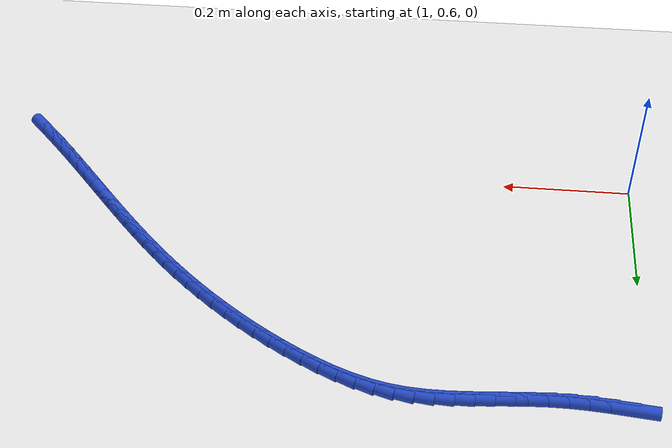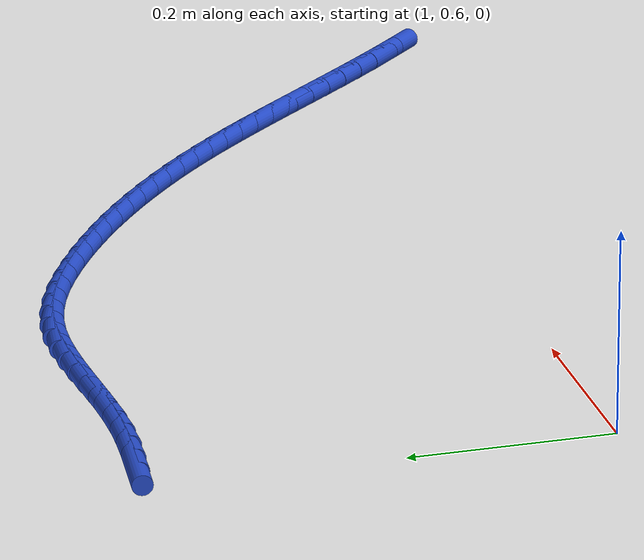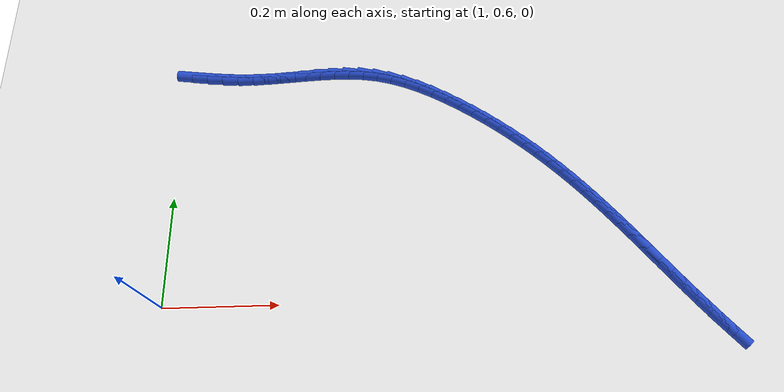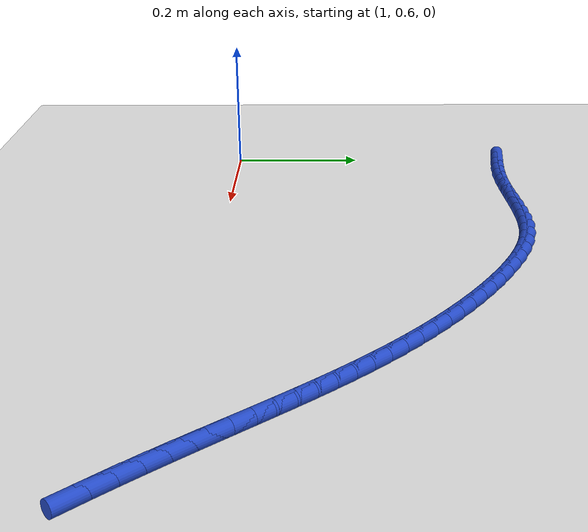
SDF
<sdf version="1.6">
 <world name="default">
  <model name="ground_plane">
   <static>1</static>
   <link name="link">
    <collision name="collision">
     <geometry><plane><normal>0 0 1</normal><size>100 100</size></plane></geometry>
     <surface><friction><ode><mu>100</mu><mu2>50</mu2></ode></friction></surface>
    </collision>
    <visual name="visual">
     <cast_shadows>0</cast_shadows>
     <geometry><plane><normal>0 0 1</normal><size>100 100</size></plane></geometry>
     <material>
      <script><uri>file://media/materials/scripts/gazebo.material</uri><name>Gazebo/WhiteGlow</name></script>
     </material>
    </visual>
   </link>
  </model>
  <model name="line">
   <link name="link_59">
    <pose>1.025717435817325 1.0446636232749276 0.01 0 1.57 -0.10864207669625411</pose>
    <collision name="collision">
     <geometry><cylinder><radius>0.01</radius><length>0.08</length></cylinder></geometry>
    </collision>
    <visual name="visual">
     <material>
      <script><name>Gazebo/Blue</name><uri>file://media/materials/scripts/gazebo.material</uri></script>
     </material>
     <geometry><cylinder><radius>0.01</radius><length>0.08</length></cylinder></geometry>
    </visual>
   </link>
   <link name="link_60">
    <pose>1.054436503308965 1.041531190292627 0.01 0 1.57 -0.08398105640327302</pose>
    <collision name="collision">
     <geometry><cylinder><radius>0.01</radius><length>0.08</length></cylinder></geometry>
    </collision>
    <visual name="visual">
     <material>
      <script><name>Gazebo/Blue</name><uri>file://media/materials/scripts/gazebo.material</uri></script>
     </material>
     <geometry><cylinder><radius>0.01</radius><length>0.08</length></cylinder></geometry>
    </visual>
   </link>
   <link name="link_61">
    <pose>1.0832087285038776 1.0391091717280514 0.01 0 1.57 -0.04759159864553037</pose>
    <collision name="collision">
     <geometry><cylinder><radius>0.01</radius><length>0.08</length></cylinder></geometry>
    </collision>
    <visual name="visual">
     <material>
      <script><name>Gazebo/Blue</name><uri>file://media/materials/scripts/gazebo.material</uri></script>
     </material>
     <geometry><cylinder><radius>0.01</radius><length>0.08</length></cylinder></geometry>
    </visual>
   </link>
   <link name="link_62">
    <pose>1.1119906338642012 1.0377383597386876 0.01 0 1.57 -0.0009077507735317246</pose>
    <collision name="collision">
     <geometry><cylinder><radius>0.01</radius><length>0.08</length></cylinder></geometry>
    </collision>
    <visual name="visual">
     <material>
      <script><name>Gazebo/Blue</name><uri>file://media/materials/scripts/gazebo.material</uri></script>
     </material>
     <geometry><cylinder><radius>0.01</radius><length>0.08</length></cylinder></geometry>
    </visual>
   </link>
   <link name="link_63">
    <pose>1.1407393812747322 1.0377122630338196 0.01 0 1.57 0.03935869559519546</pose>
    <collision name="collision">
     <geometry><cylinder><radius>0.01</radius><length>0.08</length></cylinder></geometry>
    </collision>
    <visual name="visual">
     <material>
      <script><name>Gazebo/Blue</name><uri>file://media/materials/scripts/gazebo.material</uri></script>
     </material>
     <geometry><cylinder><radius>0.01</radius><length>0.08</length></cylinder></geometry>
    </visual>
   </link>
   <link name="link_64">
    <pose>1.169418661139253 1.038841625307769 0.01 0 1.57 0.06336344936523843</pose>
    <collision name="collision">
     <geometry><cylinder><radius>0.01</radius><length>0.08</length></cylinder></geometry>
    </collision>
    <visual name="visual">
     <material>
      <script><name>Gazebo/Blue</name><uri>file://media/materials/scripts/gazebo.material</uri></script>
     </material>
     <geometry><cylinder><radius>0.01</radius><length>0.08</length></cylinder></geometry>
    </visual>
   </link>
   <link name="link_65">
    <pose>1.1979959825380984 1.0406548102164859 0.01 0 1.57 0.07096385921496393</pose>
    <collision name="collision">
     <geometry><cylinder><radius>0.01</radius><length>0.08</length></cylinder></geometry>
    </collision>
    <visual name="visual">
     <material>
      <script><name>Gazebo/Blue</name><uri>file://media/materials/scripts/gazebo.material</uri></script>
     </material>
     <geometry><cylinder><radius>0.01</radius><length>0.08</length></cylinder></geometry>
    </visual>
   </link>
   <link name="link_66">
    <pose>1.226438902651079 1.0426766245993333 0.01 0 1.57 0.06199592030524616</pose>
    <collision name="collision">
     <geometry><cylinder><radius>0.01</radius><length>0.08</length></cylinder></geometry>
    </collision>
    <visual name="visual">
     <material>
      <script><name>Gazebo/Blue</name><uri>file://media/materials/scripts/gazebo.material</uri></script>
     </material>
     <geometry><cylinder><radius>0.01</radius><length>0.08</length></cylinder></geometry>
    </visual>
   </link>
   <link name="link_67">
    <pose>1.254714978658005 1.0444318752956745 0.01 0 1.57 0.03608154739395848</pose>
    <collision name="collision">
     <geometry><cylinder><radius>0.01</radius><length>0.08</length></cylinder></geometry>
    </collision>
    <visual name="visual">
     <material>
      <script><name>Gazebo/Blue</name><uri>file://media/materials/scripts/gazebo.material</uri></script>
     </material>
     <geometry><cylinder><radius>0.01</radius><length>0.08</length></cylinder></geometry>
    </visual>
   </link>
   <link name="link_68">
    <pose>1.2827917677386875 1.0454453691448726 0.01 0 1.57 -0.007306593803092277</pose>
    <collision name="collision">
     <geometry><cylinder><radius>0.01</radius><length>0.08</length></cylinder></geometry>
    </collision>
    <visual name="visual">
     <material>
      <script><name>Gazebo/Blue</name><uri>file://media/materials/scripts/gazebo.material</uri></script>
     </material>
     <geometry><cylinder><radius>0.01</radius><length>0.08</length></cylinder></geometry>
    </visual>
   </link>
   <link name="link_69">
    <pose>1.310636827072937 1.04524191298629 0.01 0 1.57 -0.06862081937940018</pose>
    <collision name="collision">
     <geometry><cylinder><radius>0.01</radius><length>0.08</length></cylinder></geometry>
    </collision>
    <visual name="visual">
     <material>
      <script><name>Gazebo/Blue</name><uri>file://media/materials/scripts/gazebo.material</uri></script>
     </material>
     <geometry><cylinder><radius>0.01</radius><length>0.08</length></cylinder></geometry>
    </visual>
   </link>
   <link name="link_70">
    <pose>1.3382177138405649 1.0433463136592906 0.01 0 1.57 -0.1478247919482586</pose>
    <collision name="collision">
     <geometry><cylinder><radius>0.01</radius><length>0.08</length></cylinder></geometry>
    </collision>
    <visual name="visual">
     <material>
      <script><name>Gazebo/Blue</name><uri>file://media/materials/scripts/gazebo.material</uri></script>
     </material>
     <geometry><cylinder><radius>0.01</radius><length>0.08</length></cylinder></geometry>
    </visual>
   </link>
   <link name="link_71">
    <pose>1.3655019851712904 1.0392833841148497 0.01 0 1.57 -0.23852647990503897</pose>
    <collision name="collision">
     <geometry><cylinder><radius>0.01</radius><length>0.08</length></cylinder></geometry>
    </collision>
    <visual name="visual">
     <material>
      <script><name>Gazebo/Blue</name><uri>file://media/materials/scripts/gazebo.material</uri></script>
     </material>
     <geometry><cylinder><radius>0.01</radius><length>0.08</length></cylinder></geometry>
    </visual>
   </link>
   <link name="link_72">
    <pose>1.392455957001149 1.032729377595018 0.01 0 1.57 -0.3204761642376022</pose>
    <collision name="collision">
     <geometry><cylinder><radius>0.01</radius><length>0.08</length></cylinder></geometry>
    </collision>
    <visual name="visual">
     <material>
      <script><name>Gazebo/Blue</name><uri>file://media/materials/scripts/gazebo.material</uri></script>
     </material>
     <geometry><cylinder><radius>0.01</radius><length>0.08</length></cylinder></geometry>
    </visual>
   </link>
   <link name="link_73">
    <pose>1.4190414816199879 1.023905164903328 0.01 0 1.57 -0.3896927531819471</pose>
    <collision name="collision">
     <geometry><cylinder><radius>0.01</radius><length>0.08</length></cylinder></geometry>
    </collision>
    <visual name="visual">
     <material>
      <script><name>Gazebo/Blue</name><uri>file://media/materials/scripts/gazebo.material</uri></script>
     </material>
     <geometry><cylinder><radius>0.01</radius><length>0.08</length></cylinder></geometry>
    </visual>
   </link>
   <link name="link_74">
    <pose>1.4452194082709324 1.0131540003916313 0.01 0 1.57 -0.4470112089415383</pose>
    <collision name="collision">
     <geometry><cylinder><radius>0.01</radius><length>0.08</length></cylinder></geometry>
    </collision>
    <visual name="visual">
     <material>
      <script><name>Gazebo/Blue</name><uri>file://media/materials/scripts/gazebo.material</uri></script>
     </material>
     <geometry><cylinder><radius>0.01</radius><length>0.08</length></cylinder></geometry>
    </visual>
   </link>
   <link name="link_75">
    <pose>1.4709505861971077 1.0008191384117777 0.01 0 1.57 -0.49337904855811854</pose>
    <collision name="collision">
     <geometry><cylinder><radius>0.01</radius><length>0.08</length></cylinder></geometry>
    </collision>
    <visual name="visual">
     <material>
      <script><name>Gazebo/Blue</name><uri>file://media/materials/scripts/gazebo.material</uri></script>
     </material>
     <geometry><cylinder><radius>0.01</radius><length>0.08</length></cylinder></geometry>
    </visual>
   </link>
   <link name="link_76">
    <pose>1.4961958646416402 0.9872438333156192 0.01 0 1.57 -0.5298311746733485</pose>
    <collision name="collision">
     <geometry><cylinder><radius>0.01</radius><length>0.08</length></cylinder></geometry>
    </collision>
    <visual name="visual">
     <material>
      <script><name>Gazebo/Blue</name><uri>file://media/materials/scripts/gazebo.material</uri></script>
     </material>
     <geometry><cylinder><radius>0.01</radius><length>0.08</length></cylinder></geometry>
    </visual>
   </link>
   <link name="link_77">
    <pose>1.5209169150296276 0.9727649550797888 0.01 0 1.57 -0.5610235095188191</pose>
    <collision name="collision">
     <geometry><cylinder><radius>0.01</radius><length>0.08</length></cylinder></geometry>
    </collision>
    <visual name="visual">
     <material>
      <script><name>Gazebo/Blue</name><uri>file://media/materials/scripts/gazebo.material</uri></script>
     </material>
     <geometry><cylinder><radius>0.01</radius><length>0.08</length></cylinder></geometry>
    </visual>
   </link>
   <link name="link_78">
    <pose>1.5450943308547798 0.9575724407756209 0.01 0 1.57 -0.591149794140414</pose>
    <collision name="collision">
     <geometry><cylinder><radius>0.01</radius><length>0.08</length></cylinder></geometry>
    </collision>
    <visual name="visual">
     <material>
      <script><name>Gazebo/Blue</name><uri>file://media/materials/scripts/gazebo.material</uri></script>
     </material>
     <geometry><cylinder><radius>0.01</radius><length>0.08</length></cylinder></geometry>
    </visual>
   </link>
   <link name="link_79">
    <pose>1.5687276342835734 0.9417092432867996 0.01 0 1.57 -0.6203870181535343</pose>
    <collision name="collision">
     <geometry><cylinder><radius>0.01</radius><length>0.08</length></cylinder></geometry>
    </collision>
    <visual name="visual">
     <material>
      <script><name>Gazebo/Blue</name><uri>file://media/materials/scripts/gazebo.material</uri></script>
     </material>
     <geometry><cylinder><radius>0.01</radius><length>0.08</length></cylinder></geometry>
    </visual>
   </link>
   <link name="link_80">
    <pose>1.591817170985292 0.9252119208653217 0.01 0 1.57 -0.6487404334091267</pose>
    <collision name="collision">
     <geometry><cylinder><radius>0.01</radius><length>0.08</length></cylinder></geometry>
    </collision>
    <visual name="visual">
     <material>
      <script><name>Gazebo/Blue</name><uri>file://media/materials/scripts/gazebo.material</uri></script>
     </material>
     <geometry><cylinder><radius>0.01</radius><length>0.08</length></cylinder></geometry>
    </visual>
   </link>
   <link name="link_81">
    <pose>1.6143632866292168 0.9081170317631827 0.01 0 1.57 -0.6762208371847891</pose>
    <collision name="collision">
     <geometry><cylinder><radius>0.01</radius><length>0.08</length></cylinder></geometry>
    </collision>
    <visual name="visual">
     <material>
      <script><name>Gazebo/Blue</name><uri>file://media/materials/scripts/gazebo.material</uri></script>
     </material>
     <geometry><cylinder><radius>0.01</radius><length>0.08</length></cylinder></geometry>
    </visual>
   </link>
   <link name="link_82">
    <pose>1.636366326884631 0.8904611342323807 0.01 0 1.57 -0.7028438273933689</pose>
    <collision name="collision">
     <geometry><cylinder><radius>0.01</radius><length>0.08</length></cylinder></geometry>
    </collision>
    <visual name="visual">
     <material>
      <script><name>Gazebo/Blue</name><uri>file://media/materials/scripts/gazebo.material</uri></script>
     </material>
     <geometry><cylinder><radius>0.01</radius><length>0.08</length></cylinder></geometry>
    </visual>
   </link>
   <link name="link_83">
    <pose>1.6578266374208153 0.8722807865249109 0.01 0 1.57 -0.7286290986854383</pose>
    <collision name="collision">
     <geometry><cylinder><radius>0.01</radius><length>0.08</length></cylinder></geometry>
    </collision>
    <visual name="visual">
     <material>
      <script><name>Gazebo/Blue</name><uri>file://media/materials/scripts/gazebo.material</uri></script>
     </material>
     <geometry><cylinder><radius>0.01</radius><length>0.08</length></cylinder></geometry>
    </visual>
   </link>
   <link name="link_84">
    <pose>1.6787445639070528 0.8536125468927701 0.01 0 1.57 -0.7535997923402684</pose>
    <collision name="collision">
     <geometry><cylinder><radius>0.01</radius><length>0.08</length></cylinder></geometry>
    </collision>
    <visual name="visual">
     <material>
      <script><name>Gazebo/Blue</name><uri>file://media/materials/scripts/gazebo.material</uri></script>
     </material>
     <geometry><cylinder><radius>0.01</radius><length>0.08</length></cylinder></geometry>
    </visual>
   </link>
   <link name="link_85">
    <pose>1.6991204520126255 0.8344929735879547 0.01 0 1.57 -0.7777818282216591</pose>
    <collision name="collision">
     <geometry><cylinder><radius>0.01</radius><length>0.08</length></cylinder></geometry>
    </collision>
    <visual name="visual">
     <material>
      <script><name>Gazebo/Blue</name><uri>file://media/materials/scripts/gazebo.material</uri></script>
     </material>
     <geometry><cylinder><radius>0.01</radius><length>0.08</length></cylinder></geometry>
    </visual>
   </link>
   <link name="link_86">
    <pose>1.7189546506634037 0.8149586247879211 0.01 0 1.57 -0.8007733322936967</pose>
    <collision name="collision">
     <geometry><cylinder><radius>0.01</radius><length>0.08</length></cylinder></geometry>
    </collision>
    <visual name="visual">
     <material>
      <script><name>Gazebo/Blue</name><uri>file://media/materials/scripts/gazebo.material</uri></script>
     </material>
     <geometry><cylinder><radius>0.01</radius><length>0.08</length></cylinder></geometry>
    </visual>
   </link>
   <link name="link_87">
    <pose>1.7382645009375504 0.7950456697326854 0.01 0 1.57 -0.8211030467952494</pose>
    <collision name="collision">
     <geometry><cylinder><radius>0.01</radius><length>0.08</length></cylinder></geometry>
    </collision>
    <visual name="visual">
     <material>
      <script><name>Gazebo/Blue</name><uri>file://media/materials/scripts/gazebo.material</uri></script>
     </material>
     <geometry><cylinder><radius>0.01</radius><length>0.08</length></cylinder></geometry>
    </visual>
   </link>
   <link name="link_88">
    <pose>1.7571239576715256 0.7747889818164057 0.01 0 1.57 -0.8383693134948366</pose>
    <collision name="collision">
     <geometry><cylinder><radius>0.01</radius><length>0.08</length></cylinder></geometry>
    </collision>
    <visual name="visual">
     <material>
      <script><name>Gazebo/Blue</name><uri>file://media/materials/scripts/gazebo.material</uri></script>
     </material>
     <geometry><cylinder><radius>0.01</radius><length>0.08</length></cylinder></geometry>
    </visual>
   </link>
   <link name="link_89">
    <pose>1.7756187516930626 0.7542231648897583 0.01 0 1.57 -0.8524948099996241</pose>
    <collision name="collision">
     <geometry><cylinder><radius>0.01</radius><length>0.08</length></cylinder></geometry>
    </collision>
    <visual name="visual">
     <material>
      <script><name>Gazebo/Blue</name><uri>file://media/materials/scripts/gazebo.material</uri></script>
     </material>
     <geometry><cylinder><radius>0.01</radius><length>0.08</length></cylinder></geometry>
    </visual>
   </link>
   <link name="link_90">
    <pose>1.7938346138298922 0.7333828228034208 0.01 0 1.57 -0.8634330793332667</pose>
    <collision name="collision">
     <geometry><cylinder><radius>0.01</radius><length>0.08</length></cylinder></geometry>
    </collision>
    <visual name="visual">
     <material>
      <script><name>Gazebo/Blue</name><uri>file://media/materials/scripts/gazebo.material</uri></script>
     </material>
     <geometry><cylinder><radius>0.01</radius><length>0.08</length></cylinder></geometry>
    </visual>
   </link>
   <link name="link_91">
    <pose>1.8118572749097475 0.7123025594080693 0.01 0 1.57 -0.8711648889584206</pose>
    <collision name="collision">
     <geometry><cylinder><radius>0.01</radius><length>0.08</length></cylinder></geometry>
    </collision>
    <visual name="visual">
     <material>
      <script><name>Gazebo/Blue</name><uri>file://media/materials/scripts/gazebo.material</uri></script>
     </material>
     <geometry><cylinder><radius>0.01</radius><length>0.08</length></cylinder></geometry>
    </visual>
   </link>
   <link name="link_92">
    <pose>1.8297724657603596 0.6910169785543804 0.01 0 1.57 -0.8756949224587817</pose>
    <collision name="collision">
     <geometry><cylinder><radius>0.01</radius><length>0.08</length></cylinder></geometry>
    </collision>
    <visual name="visual">
     <material>
      <script><name>Gazebo/Blue</name><uri>file://media/materials/scripts/gazebo.material</uri></script>
     </material>
     <geometry><cylinder><radius>0.01</radius><length>0.08</length></cylinder></geometry>
    </visual>
   </link>
   <link name="link_93">
    <pose>1.8476659172094614 0.6695606840930308 0.01 0 1.57 -0.8770490332902481</pose>
    <collision name="collision">
     <geometry><cylinder><radius>0.01</radius><length>0.08</length></cylinder></geometry>
    </collision>
    <visual name="visual">
     <material>
      <script><name>Gazebo/Blue</name><uri>file://media/materials/scripts/gazebo.material</uri></script>
     </material>
     <geometry><cylinder><radius>0.01</radius><length>0.08</length></cylinder></geometry>
    </visual>
   </link>
   <link name="link_94">
    <pose>1.865623360084784 0.6479682798746976 0.01 0 1.57 -0.8752721843655302</pose>
    <collision name="collision">
     <geometry><cylinder><radius>0.01</radius><length>0.08</length></cylinder></geometry>
    </collision>
    <visual name="visual">
     <material>
      <script><name>Gazebo/Blue</name><uri>file://media/materials/scripts/gazebo.material</uri></script>
     </material>
     <geometry><cylinder><radius>0.01</radius><length>0.08</length></cylinder></geometry>
    </visual>
   </link>
   <link name="link_95">
    <pose>1.8837305252140601 0.6262743697500572 0.01 0 1.57 -0.8704271049471141</pose>
    <collision name="collision">
     <geometry><cylinder><radius>0.01</radius><length>0.08</length></cylinder></geometry>
    </collision>
    <visual name="visual">
     <material>
      <script><name>Gazebo/Blue</name><uri>file://media/materials/scripts/gazebo.material</uri></script>
     </material>
     <geometry><cylinder><radius>0.01</radius><length>0.08</length></cylinder></geometry>
    </visual>
   </link>
   <link name="link_96">
    <pose>1.9020731434250218 0.604513557569786 0.01 0 1.57 -0.8625936191770527</pose>
    <collision name="collision">
     <geometry><cylinder><radius>0.01</radius><length>0.08</length></cylinder></geometry>
    </collision>
    <visual name="visual">
     <material>
      <script><name>Gazebo/Blue</name><uri>file://media/materials/scripts/gazebo.material</uri></script>
     </material>
     <geometry><cylinder><radius>0.01</radius><length>0.08</length></cylinder></geometry>
    </visual>
   </link>
   <link name="link_97">
    <pose>1.9207369455453995 0.582720447184561 0.01 0 1.57 -0.8518685377468678</pose>
    <collision name="collision">
     <geometry><cylinder><radius>0.01</radius><length>0.08</length></cylinder></geometry>
    </collision>
    <visual name="visual">
     <material>
      <script><name>Gazebo/Blue</name><uri>file://media/materials/scripts/gazebo.material</uri></script>
     </material>
     <geometry><cylinder><radius>0.01</radius><length>0.08</length></cylinder></geometry>
    </visual>
   </link>
   <link name="link_98">
    <pose>1.9398076624029272 0.5609296424450586 0.01 0 1.57 -0.8383659542039874</pose>
    <collision name="collision">
     <geometry><cylinder><radius>0.01</radius><length>0.08</length></cylinder></geometry>
    </collision>
    <visual name="visual">
     <material>
      <script><name>Gazebo/Blue</name><uri>file://media/materials/scripts/gazebo.material</uri></script>
     </material>
     <geometry><cylinder><radius>0.01</radius><length>0.08</length></cylinder></geometry>
    </visual>
   </link>
   <link name="link_99">
    <pose>1.9593710248253355 0.5391757472019557 0.01 0 1.57 -0.8256433552662915</pose>
    <collision name="collision">
     <geometry><cylinder><radius>0.01</radius><length>0.08</length></cylinder></geometry>
    </collision>
    <visual name="visual">
     <material>
      <script><name>Gazebo/Blue</name><uri>file://media/materials/scripts/gazebo.material</uri></script>
     </material>
     <geometry><cylinder><radius>0.01</radius><length>0.08</length></cylinder></geometry>
    </visual>
   </link>
  </model>
 </world>
</sdf>
